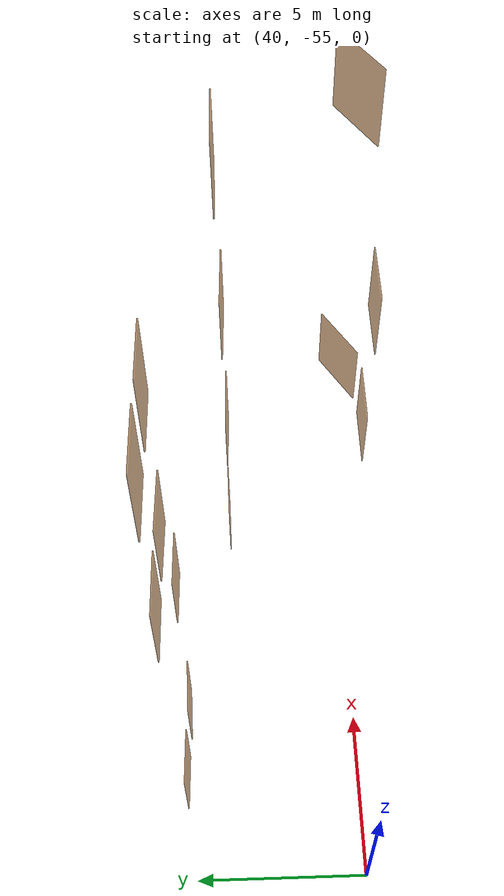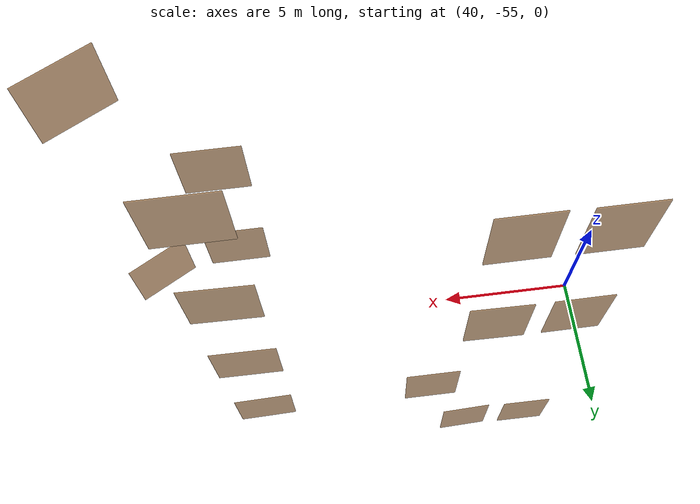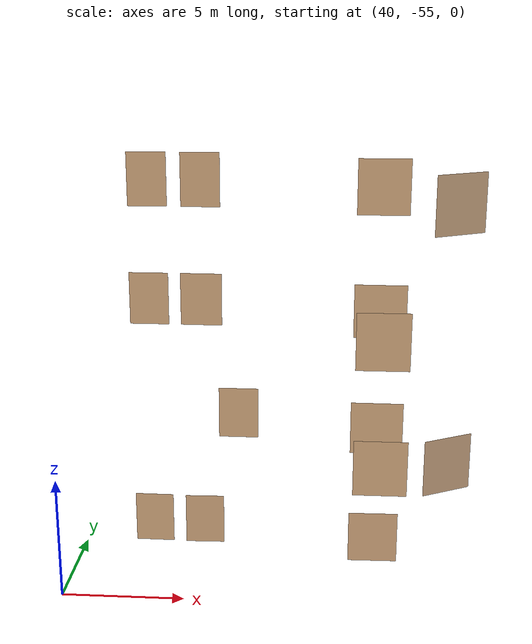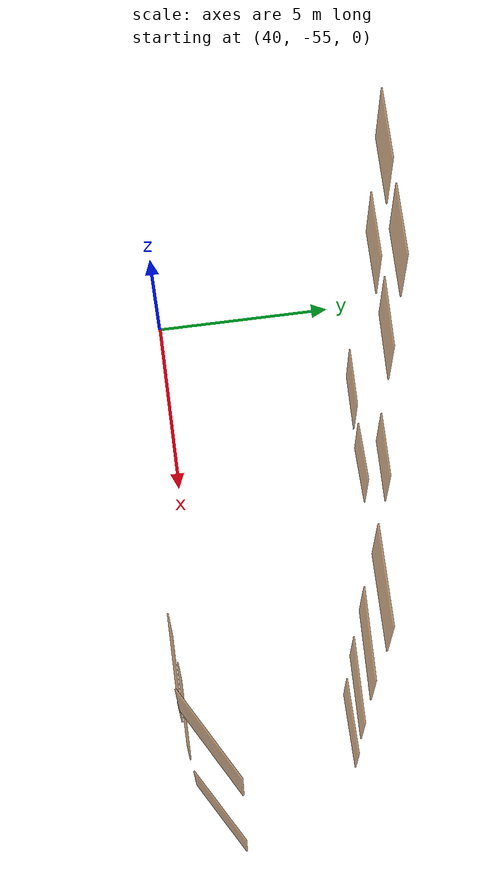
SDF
<sdf version="1.7">
 <world name="sim_world">
  <model name="puerta45">
   <pose>52.62452120995167 -51.090835868981564 0.0 0 0 0.01611155114975476</pose>
   <link name="right">
    <pose>0 0 1.11 0 0 0</pose>
    <visual name="right_visual">
     <geometry><box><size>2.071959850545931 0.03 2.2</size></box></geometry>
     <material>
      <ambient>0.5 0.25 0 0.6</ambient>
      <diffuse>0.5 0.25 0 0.6</diffuse>
      <pbr><metal><metalness>0.0</metalness></metal></pbr>
     </material>
    </visual>
    <collision name="right_collision">
     <geometry><box><size>2.071959850545931 0.03 2.2</size></box></geometry>
     <surface><contact><collide_bitmask>0x02</collide_bitmask></contact></surface>
    </collision>
    <inertial>
     <mass>50.0</mass>
     <inertia><ixx>20.17041666666667</ixx><iyy>38.054240092809664</iyy><izz>17.89132342614299</izz></inertia>
    </inertial>
   </link>
   <joint name="right_joint" type="revolute">
    <parent>world</parent>
    <child>right</child>
    <axis><xyz>0 0 -1</xyz><limit><lower>0</lower><upper>1.57</upper></limit></axis>
    <pose>1.0409799252729655 0 0 0 0 0</pose>
   </joint>
   <plugin name="register_component" filename="libregister_component.so">
    <component name="Door">
     <v_max_door>0.5</v_max_door>
     <a_max_door>0.3</a_max_door>
     <a_nom_door>0.15</a_nom_door>
     <dx_min_door>0.01</dx_min_door>
     <f_max_door>500.0</f_max_door>
     <ros_interface>true</ros_interface>
     <door name="puerta45" type="SwingDoor" left_joint_name="empty_joint" right_joint_name="right_joint"/>
    </component>
   </plugin>
  </model>
  <model name="puerta50">
   <pose>43.00988007875425 -49.71609092536245 0.0 0 0 -0.014293274724605544</pose>
   <link name="right">
    <pose>0 0 1.11 0 0 0</pose>
    <visual name="right_visual">
     <geometry><box><size>1.6680665233060104 0.03 2.2</size></box></geometry>
     <material>
      <ambient>0.5 0.25 0 0.6</ambient>
      <diffuse>0.5 0.25 0 0.6</diffuse>
      <pbr><metal><metalness>0.0</metalness></metal></pbr>
     </material>
    </visual>
    <collision name="right_collision">
     <geometry><box><size>1.6680665233060104 0.03 2.2</size></box></geometry>
     <surface><contact><collide_bitmask>0x02</collide_bitmask></contact></surface>
    </collision>
    <inertial>
     <mass>50.0</mass>
     <inertia><ixx>20.17041666666667</ixx><iyy>31.760191359059174</iyy><izz>11.597274692392505</izz></inertia>
    </inertial>
   </link>
   <joint name="right_joint" type="revolute">
    <parent>world</parent>
    <child>right</child>
    <axis><xyz>0 0 1</xyz><limit><lower>0</lower><upper>1.57</upper></limit></axis>
    <pose>0.8390332616530052 0 0 0 0 0</pose>
   </joint>
   <plugin name="register_component" filename="libregister_component.so">
    <component name="Door">
     <v_max_door>0.5</v_max_door>
     <a_max_door>0.3</a_max_door>
     <a_nom_door>0.15</a_nom_door>
     <dx_min_door>0.01</dx_min_door>
     <f_max_door>500.0</f_max_door>
     <ros_interface>true</ros_interface>
     <door name="puerta50" type="SwingDoor" left_joint_name="empty_joint" right_joint_name="right_joint"/>
    </component>
   </plugin>
  </model>
  <model name="puerta51">
   <pose>45.25226418471452 -49.754465724002145 0.0 0 0 0.027257866903798535</pose>
   <link name="right">
    <pose>0 0 1.11 0 0 0</pose>
    <visual name="right_visual">
     <geometry><box><size>1.6764686104934292 0.03 2.2</size></box></geometry>
     <material>
      <ambient>0.5 0.25 0 0.6</ambient>
      <diffuse>0.5 0.25 0 0.6</diffuse>
      <pbr><metal><metalness>0.0</metalness></metal></pbr>
     </material>
    </visual>
    <collision name="right_collision">
     <geometry><box><size>1.6764686104934292 0.03 2.2</size></box></geometry>
     <surface><contact><collide_bitmask>0x02</collide_bitmask></contact></surface>
    </collision>
    <inertial>
     <mass>50.0</mass>
     <inertia><ixx>20.17041666666667</ixx><iyy>31.877279174874044</iyy><izz>11.714362508207374</izz></inertia>
    </inertial>
   </link>
   <joint name="right_joint" type="revolute">
    <parent>world</parent>
    <child>right</child>
    <axis><xyz>0 0 1</xyz><limit><lower>0</lower><upper>1.57</upper></limit></axis>
    <pose>0.8432343052467146 0 0 0 0 0</pose>
   </joint>
   <plugin name="register_component" filename="libregister_component.so">
    <component name="Door">
     <v_max_door>0.5</v_max_door>
     <a_max_door>0.3</a_max_door>
     <a_nom_door>0.15</a_nom_door>
     <dx_min_door>0.01</dx_min_door>
     <f_max_door>500.0</f_max_door>
     <ros_interface>true</ros_interface>
     <door name="puerta51" type="SwingDoor" left_joint_name="empty_joint" right_joint_name="right_joint"/>
    </component>
   </plugin>
  </model>
  <model name="puerta3157">
   <pose>52.64798474623262 -51.153678265276966 5.0 0 0 -0.013743878612011347</pose>
   <link name="right">
    <pose>0 0 1.11 0 0 0</pose>
    <visual name="right_visual">
     <geometry><box><size>2.152727356726489 0.03 2.2</size></box></geometry>
     <material>
      <ambient>0.5 0.25 0 0.6</ambient>
      <diffuse>0.5 0.25 0 0.6</diffuse>
      <pbr><metal><metalness>0.0</metalness></metal></pbr>
     </material>
    </visual>
    <collision name="right_collision">
     <geometry><box><size>2.152727356726489 0.03 2.2</size></box></geometry>
     <surface><contact><collide_bitmask>0x02</collide_bitmask></contact></surface>
    </collision>
    <inertial>
     <mass>50.0</mass>
     <inertia><ixx>20.17041666666667</ixx><iyy>39.47597946832757</iyy><izz>19.313062801660898</izz></inertia>
    </inertial>
   </link>
   <joint name="right_joint" type="revolute">
    <parent>world</parent>
    <child>right</child>
    <axis><xyz>0 0 -1</xyz><limit><lower>0</lower><upper>1.57</upper></limit></axis>
    <pose>1.0813636783632443 0 0 0 0 0</pose>
   </joint>
   <plugin name="register_component" filename="libregister_component.so">
    <component name="Door">
     <v_max_door>0.5</v_max_door>
     <a_max_door>0.3</a_max_door>
     <a_nom_door>0.15</a_nom_door>
     <dx_min_door>0.01</dx_min_door>
     <f_max_door>500.0</f_max_door>
     <ros_interface>true</ros_interface>
     <door name="puerta3157" type="SwingDoor" left_joint_name="empty_joint" right_joint_name="right_joint"/>
    </component>
   </plugin>
  </model>
  <model name="puerta3160">
   <pose>46.76442740042876 -49.64325401304117 5.0 0 0 -0.008356220599939308</pose>
   <link name="right">
    <pose>0 0 1.11 0 0 0</pose>
    <visual name="right_visual">
     <geometry><box><size>1.6841726951155045 0.03 2.2</size></box></geometry>
     <material>
      <ambient>0.5 0.25 0 0.6</ambient>
      <diffuse>0.5 0.25 0 0.6</diffuse>
      <pbr><metal><metalness>0.0</metalness></metal></pbr>
     </material>
    </visual>
    <collision name="right_collision">
     <geometry><box><size>1.6841726951155045 0.03 2.2</size></box></geometry>
     <surface><contact><collide_bitmask>0x02</collide_bitmask></contact></surface>
    </collision>
    <inertial>
     <mass>50.0</mass>
     <inertia><ixx>20.17041666666667</ixx><iyy>31.985156945719265</iyy><izz>11.822240279052593</izz></inertia>
    </inertial>
   </link>
   <joint name="right_joint" type="revolute">
    <parent>world</parent>
    <child>right</child>
    <axis><xyz>0 0 1</xyz><limit><lower>0</lower><upper>1.57</upper></limit></axis>
    <pose>0.8470863475577523 0 0 0 0 0</pose>
   </joint>
   <plugin name="register_component" filename="libregister_component.so">
    <component name="Door">
     <v_max_door>0.5</v_max_door>
     <a_max_door>0.3</a_max_door>
     <a_nom_door>0.15</a_nom_door>
     <dx_min_door>0.01</dx_min_door>
     <f_max_door>500.0</f_max_door>
     <ros_interface>true</ros_interface>
     <door name="puerta3160" type="SwingDoor" left_joint_name="empty_joint" right_joint_name="right_joint"/>
    </component>
   </plugin>
  </model>
  <model name="puerta3162">
   <pose>52.687840266934906 -55.48779798948548 5.0 0 0 1.1254477177063187e-05</pose>
   <link name="right">
    <pose>0 0 1.11 0 0 0</pose>
    <visual name="right_visual">
     <geometry><box><size>2.0522183623719146 0.03 2.2</size></box></geometry>
     <material>
      <ambient>0.5 0.25 0 0.6</ambient>
      <diffuse>0.5 0.25 0 0.6</diffuse>
      <pbr><metal><metalness>0.0</metalness></metal></pbr>
     </material>
    </visual>
    <collision name="right_collision">
     <geometry><box><size>2.0522183623719146 0.03 2.2</size></box></geometry>
     <surface><contact><collide_bitmask>0x02</collide_bitmask></contact></surface>
    </collision>
    <inertial>
     <mass>50.0</mass>
     <inertia><ixx>20.17041666666667</ixx><iyy>37.715000861901935</iyy><izz>17.552084195235263</izz></inertia>
    </inertial>
   </link>
   <joint name="right_joint" type="revolute">
    <parent>world</parent>
    <child>right</child>
    <axis><xyz>0 0 1</xyz><limit><lower>0</lower><upper>1.57</upper></limit></axis>
    <pose>1.0311091811859572 0 0 0 0 0</pose>
   </joint>
   <plugin name="register_component" filename="libregister_component.so">
    <component name="Door">
     <v_max_door>0.5</v_max_door>
     <a_max_door>0.3</a_max_door>
     <a_nom_door>0.15</a_nom_door>
     <dx_min_door>0.01</dx_min_door>
     <f_max_door>500.0</f_max_door>
     <ros_interface>true</ros_interface>
     <door name="puerta3162" type="SwingDoor" left_joint_name="empty_joint" right_joint_name="right_joint"/>
    </component>
   </plugin>
  </model>
  <model name="puerta3163">
   <pose>55.24471861370965 -54.883079021179796 5.0 0 0 0.5235753987937223</pose>
   <link name="right">
    <pose>0 0 1.11 0 0 0</pose>
    <visual name="right_visual">
     <geometry><box><size>2.0804089382396547 0.03 2.2</size></box></geometry>
     <material>
      <ambient>0.5 0.25 0 0.6</ambient>
      <diffuse>0.5 0.25 0 0.6</diffuse>
      <pbr><metal><metalness>0.0</metalness></metal></pbr>
     </material>
    </visual>
    <collision name="right_collision">
     <geometry><box><size>2.0804089382396547 0.03 2.2</size></box></geometry>
     <surface><contact><collide_bitmask>0x02</collide_bitmask></contact></surface>
    </collision>
    <inertial>
     <mass>50.0</mass>
     <inertia><ixx>20.17041666666667</ixx><iyy>38.20042229294771</iyy><izz>18.037505626281032</izz></inertia>
    </inertial>
   </link>
   <joint name="right_joint" type="revolute">
    <parent>world</parent>
    <child>right</child>
    <axis><xyz>0 0 -1</xyz><limit><lower>0</lower><upper>1.57</upper></limit></axis>
    <pose>1.0452044691198272 0 0 0 0 0</pose>
   </joint>
   <plugin name="register_component" filename="libregister_component.so">
    <component name="Door">
     <v_max_door>0.5</v_max_door>
     <a_max_door>0.3</a_max_door>
     <a_nom_door>0.15</a_nom_door>
     <dx_min_door>0.01</dx_min_door>
     <f_max_door>500.0</f_max_door>
     <ros_interface>true</ros_interface>
     <door name="puerta3163" type="SwingDoor" left_joint_name="empty_joint" right_joint_name="right_joint"/>
    </component>
   </plugin>
  </model>
  <model name="puerta5252">
   <pose>52.65379555990668 -51.15801122821634 10.0 0 0 -0.02128130177479423</pose>
   <link name="right">
    <pose>0 0 1.11 0 0 0</pose>
    <visual name="right_visual">
     <geometry><box><size>2.1143462674342506 0.03 2.2</size></box></geometry>
     <material>
      <ambient>0.5 0.25 0 0.6</ambient>
      <diffuse>0.5 0.25 0 0.6</diffuse>
      <pbr><metal><metalness>0.0</metalness></metal></pbr>
     </material>
    </visual>
    <collision name="right_collision">
     <geometry><box><size>2.1143462674342506 0.03 2.2</size></box></geometry>
     <surface><contact><collide_bitmask>0x02</collide_bitmask></contact></surface>
    </collision>
    <inertial>
     <mass>50.0</mass>
     <inertia><ixx>20.17041666666667</ixx><iyy>38.793583910888124</iyy><izz>18.63066724422145</izz></inertia>
    </inertial>
   </link>
   <joint name="right_joint" type="revolute">
    <parent>world</parent>
    <child>right</child>
    <axis><xyz>0 0 -1</xyz><limit><lower>0</lower><upper>1.57</upper></limit></axis>
    <pose>1.0621731337171252 0 0 0 0 0</pose>
   </joint>
   <plugin name="register_component" filename="libregister_component.so">
    <component name="Door">
     <v_max_door>0.5</v_max_door>
     <a_max_door>0.3</a_max_door>
     <a_nom_door>0.15</a_nom_door>
     <dx_min_door>0.01</dx_min_door>
     <f_max_door>500.0</f_max_door>
     <ros_interface>true</ros_interface>
     <door name="puerta5252" type="SwingDoor" left_joint_name="empty_joint" right_joint_name="right_joint"/>
    </component>
   </plugin>
  </model>
  <model name="puerta5253">
   <pose>45.22021995034004 -49.6385065076998 10.0 0 0 -0.019480210034538845</pose>
   <link name="right">
    <pose>0 0 1.11 0 0 0</pose>
    <visual name="right_visual">
     <geometry><box><size>1.7301233370228832 0.03 2.2</size></box></geometry>
     <material>
      <ambient>0.5 0.25 0 0.6</ambient>
      <diffuse>0.5 0.25 0 0.6</diffuse>
      <pbr><metal><metalness>0.0</metalness></metal></pbr>
     </material>
    </visual>
    <collision name="right_collision">
     <geometry><box><size>1.7301233370228832 0.03 2.2</size></box></geometry>
     <surface><contact><collide_bitmask>0x02</collide_bitmask></contact></surface>
    </collision>
    <inertial>
     <mass>50.0</mass>
     <inertia><ixx>20.17041666666667</ixx><iyy>32.63886150546333</iyy><izz>12.475944838796657</izz></inertia>
    </inertial>
   </link>
   <joint name="right_joint" type="revolute">
    <parent>world</parent>
    <child>right</child>
    <axis><xyz>0 0 1</xyz><limit><lower>0</lower><upper>1.57</upper></limit></axis>
    <pose>0.8700616685114416 0 0 0 0 0</pose>
   </joint>
   <plugin name="register_component" filename="libregister_component.so">
    <component name="Door">
     <v_max_door>0.5</v_max_door>
     <a_max_door>0.3</a_max_door>
     <a_nom_door>0.15</a_nom_door>
     <dx_min_door>0.01</dx_min_door>
     <f_max_door>500.0</f_max_door>
     <ros_interface>true</ros_interface>
     <door name="puerta5253" type="SwingDoor" left_joint_name="empty_joint" right_joint_name="right_joint"/>
    </component>
   </plugin>
  </model>
  <model name="puerta5254">
   <pose>43.014730761876514 -49.621552330495895 10.0 0 0 -4.690877074373244e-06</pose>
   <link name="right">
    <pose>0 0 1.11 0 0 0</pose>
    <visual name="right_visual">
     <geometry><box><size>1.644412170850376 0.03 2.2</size></box></geometry>
     <material>
      <ambient>0.5 0.25 0 0.6</ambient>
      <diffuse>0.5 0.25 0 0.6</diffuse>
      <pbr><metal><metalness>0.0</metalness></metal></pbr>
     </material>
    </visual>
    <collision name="right_collision">
     <geometry><box><size>1.644412170850376 0.03 2.2</size></box></geometry>
     <surface><contact><collide_bitmask>0x02</collide_bitmask></contact></surface>
    </collision>
    <inertial>
     <mass>50.0</mass>
     <inertia><ixx>20.17041666666667</ixx><iyy>31.4337141151702</iyy><izz>11.27079744850353</izz></inertia>
    </inertial>
   </link>
   <joint name="right_joint" type="revolute">
    <parent>world</parent>
    <child>right</child>
    <axis><xyz>0 0 1</xyz><limit><lower>0</lower><upper>1.57</upper></limit></axis>
    <pose>0.827206085425188 0 0 0 0 0</pose>
   </joint>
   <plugin name="register_component" filename="libregister_component.so">
    <component name="Door">
     <v_max_door>0.5</v_max_door>
     <a_max_door>0.3</a_max_door>
     <a_nom_door>0.15</a_nom_door>
     <dx_min_door>0.01</dx_min_door>
     <f_max_door>500.0</f_max_door>
     <ros_interface>true</ros_interface>
     <door name="puerta5254" type="SwingDoor" left_joint_name="empty_joint" right_joint_name="right_joint"/>
    </component>
   </plugin>
  </model>
  <model name="puerta5258">
   <pose>52.659482847322245 -55.48487896511595 10.0 0 0 -4.690877071249757e-06</pose>
   <link name="right">
    <pose>0 0 1.11 0 0 0</pose>
    <visual name="right_visual">
     <geometry><box><size>2.012059319928225 0.03 2.2</size></box></geometry>
     <material>
      <ambient>0.5 0.25 0 0.6</ambient>
      <diffuse>0.5 0.25 0 0.6</diffuse>
      <pbr><metal><metalness>0.0</metalness></metal></pbr>
     </material>
    </visual>
    <collision name="right_collision">
     <geometry><box><size>2.012059319928225 0.03 2.2</size></box></geometry>
     <surface><contact><collide_bitmask>0x02</collide_bitmask></contact></surface>
    </collision>
    <inertial>
     <mass>50.0</mass>
     <inertia><ixx>20.17041666666667</ixx><iyy>37.03492794545847</iyy><izz>16.872011278791796</izz></inertia>
    </inertial>
   </link>
   <joint name="right_joint" type="revolute">
    <parent>world</parent>
    <child>right</child>
    <axis><xyz>0 0 1</xyz><limit><lower>0</lower><upper>1.57</upper></limit></axis>
    <pose>1.0110296599641124 0 0 0 0 0</pose>
   </joint>
   <plugin name="register_component" filename="libregister_component.so">
    <component name="Door">
     <v_max_door>0.5</v_max_door>
     <a_max_door>0.3</a_max_door>
     <a_nom_door>0.15</a_nom_door>
     <dx_min_door>0.01</dx_min_door>
     <f_max_door>500.0</f_max_door>
     <ros_interface>true</ros_interface>
     <door name="puerta5258" type="SwingDoor" left_joint_name="empty_joint" right_joint_name="right_joint"/>
    </component>
   </plugin>
  </model>
  <model name="puerta7189">
   <pose>52.656933890001625 -51.11060359720899 15.0 0 0 -3.99809032139947e-05</pose>
   <link name="right">
    <pose>0 0 1.11 0 0 0</pose>
    <visual name="right_visual">
     <geometry><box><size>2.070590022575173 0.03 2.2</size></box></geometry>
     <material>
      <ambient>0.5 0.25 0 0.6</ambient>
      <diffuse>0.5 0.25 0 0.6</diffuse>
      <pbr><metal><metalness>0.0</metalness></metal></pbr>
     </material>
    </visual>
    <collision name="right_collision">
     <geometry><box><size>2.070590022575173 0.03 2.2</size></box></geometry>
     <surface><contact><collide_bitmask>0x02</collide_bitmask></contact></surface>
    </collision>
    <inertial>
     <mass>50.0</mass>
     <inertia><ixx>20.17041666666667</ixx><iyy>38.03059600661607</iyy><izz>17.867679339949397</izz></inertia>
    </inertial>
   </link>
   <joint name="right_joint" type="revolute">
    <parent>world</parent>
    <child>right</child>
    <axis><xyz>0 0 -1</xyz><limit><lower>0</lower><upper>1.57</upper></limit></axis>
    <pose>1.0402950112875864 0 0 0 0 0</pose>
   </joint>
   <plugin name="register_component" filename="libregister_component.so">
    <component name="Door">
     <v_max_door>0.5</v_max_door>
     <a_max_door>0.3</a_max_door>
     <a_nom_door>0.15</a_nom_door>
     <dx_min_door>0.01</dx_min_door>
     <f_max_door>500.0</f_max_door>
     <ros_interface>true</ros_interface>
     <door name="puerta7189" type="SwingDoor" left_joint_name="empty_joint" right_joint_name="right_joint"/>
    </component>
   </plugin>
  </model>
  <model name="puerta7191">
   <pose>45.25316647954788 -49.69268226303282 15.0 0 0 -3.998090321308616e-05</pose>
   <link name="right">
    <pose>0 0 1.11 0 0 0</pose>
    <visual name="right_visual">
     <geometry><box><size>1.6126359707890918 0.03 2.2</size></box></geometry>
     <material>
      <ambient>0.5 0.25 0 0.6</ambient>
      <diffuse>0.5 0.25 0 0.6</diffuse>
      <pbr><metal><metalness>0.0</metalness></metal></pbr>
     </material>
    </visual>
    <collision name="right_collision">
     <geometry><box><size>1.6126359707890918 0.03 2.2</size></box></geometry>
     <surface><contact><collide_bitmask>0x02</collide_bitmask></contact></surface>
    </collision>
    <inertial>
     <mass>50.0</mass>
     <inertia><ixx>20.17041666666667</ixx><iyy>31.002478226178656</iyy><izz>10.839561559511987</izz></inertia>
    </inertial>
   </link>
   <joint name="right_joint" type="revolute">
    <parent>world</parent>
    <child>right</child>
    <axis><xyz>0 0 1</xyz><limit><lower>0</lower><upper>1.57</upper></limit></axis>
    <pose>0.8113179853945459 0 0 0 0 0</pose>
   </joint>
   <plugin name="register_component" filename="libregister_component.so">
    <component name="Door">
     <v_max_door>0.5</v_max_door>
     <a_max_door>0.3</a_max_door>
     <a_nom_door>0.15</a_nom_door>
     <dx_min_door>0.01</dx_min_door>
     <f_max_door>500.0</f_max_door>
     <ros_interface>true</ros_interface>
     <door name="puerta7191" type="SwingDoor" left_joint_name="empty_joint" right_joint_name="right_joint"/>
    </component>
   </plugin>
  </model>
  <model name="puerta7192">
   <pose>43.058736910110994 -49.67381385660478 15.0 0 0 -3.9980903219411325e-05</pose>
   <link name="right">
    <pose>0 0 1.11 0 0 0</pose>
    <visual name="right_visual">
     <geometry><box><size>1.6209050722597453 0.03 2.2</size></box></geometry>
     <material>
      <ambient>0.5 0.25 0 0.6</ambient>
      <diffuse>0.5 0.25 0 0.6</diffuse>
      <pbr><metal><metalness>0.0</metalness></metal></pbr>
     </material>
    </visual>
    <collision name="right_collision">
     <geometry><box><size>1.6209050722597453 0.03 2.2</size></box></geometry>
     <surface><contact><collide_bitmask>0x02</collide_bitmask></contact></surface>
    </collision>
    <inertial>
     <mass>50.0</mass>
     <inertia><ixx>20.17041666666667</ixx><iyy>31.11388855532238</iyy><izz>10.950971888655712</izz></inertia>
    </inertial>
   </link>
   <joint name="right_joint" type="revolute">
    <parent>world</parent>
    <child>right</child>
    <axis><xyz>0 0 1</xyz><limit><lower>0</lower><upper>1.57</upper></limit></axis>
    <pose>0.8154525361298727 0 0 0 0 0</pose>
   </joint>
   <plugin name="register_component" filename="libregister_component.so">
    <component name="Door">
     <v_max_door>0.5</v_max_door>
     <a_max_door>0.3</a_max_door>
     <a_nom_door>0.15</a_nom_door>
     <dx_min_door>0.01</dx_min_door>
     <f_max_door>500.0</f_max_door>
     <ros_interface>true</ros_interface>
     <door name="puerta7192" type="SwingDoor" left_joint_name="empty_joint" right_joint_name="right_joint"/>
    </component>
   </plugin>
  </model>
  <model name="puerta7196">
   <pose>55.28586713171978 -54.874603976963165 15.0 0 0 0.5149783801123156</pose>
   <link name="right">
    <pose>0 0 1.11 0 0 0</pose>
    <visual name="right_visual">
     <geometry><box><size>2.1347080218787857 0.03 2.2</size></box></geometry>
     <material>
      <ambient>0.5 0.25 0 0.6</ambient>
      <diffuse>0.5 0.25 0 0.6</diffuse>
      <pbr><metal><metalness>0.0</metalness></metal></pbr>
     </material>
    </visual>
    <collision name="right_collision">
     <geometry><box><size>2.1347080218787857 0.03 2.2</size></box></geometry>
     <surface><contact><collide_bitmask>0x02</collide_bitmask></contact></surface>
    </collision>
    <inertial>
     <mass>50.0</mass>
     <inertia><ixx>20.17041666666667</ixx><iyy>39.15407641114017</iyy><izz>18.991159744473492</izz></inertia>
    </inertial>
   </link>
   <joint name="right_joint" type="revolute">
    <parent>world</parent>
    <child>right</child>
    <axis><xyz>0 0 -1</xyz><limit><lower>0</lower><upper>1.57</upper></limit></axis>
    <pose>1.0723540109393928 0 0 0 0 0</pose>
   </joint>
   <plugin name="register_component" filename="libregister_component.so">
    <component name="Door">
     <v_max_door>0.5</v_max_door>
     <a_max_door>0.3</a_max_door>
     <a_nom_door>0.15</a_nom_door>
     <dx_min_door>0.01</dx_min_door>
     <f_max_door>500.0</f_max_door>
     <ros_interface>true</ros_interface>
     <door name="puerta7196" type="SwingDoor" left_joint_name="empty_joint" right_joint_name="right_joint"/>
    </component>
   </plugin>
  </model>
 </world>
</sdf>
